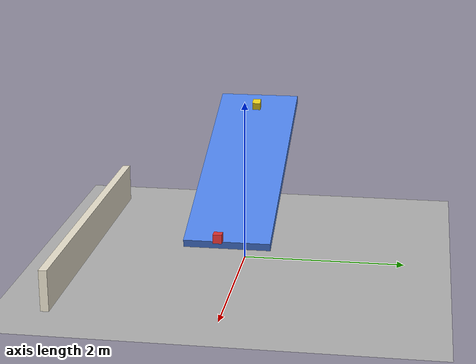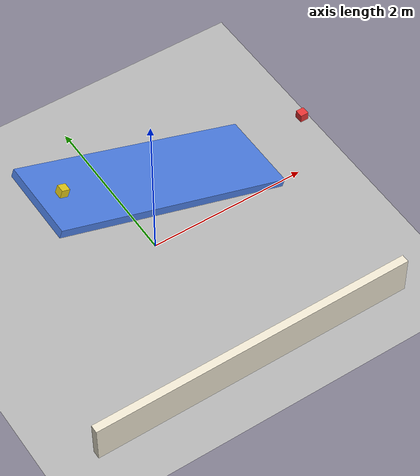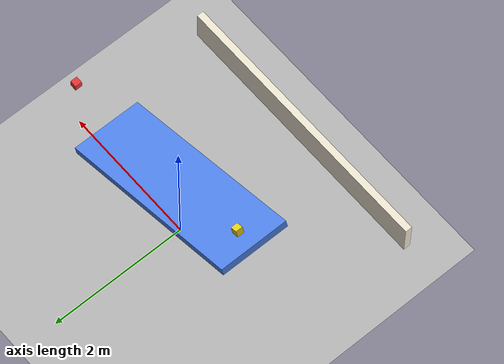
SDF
<?xml version="1.0"?>
<sdf version="1.9">
  <world name="first_world">

    <!-- 1 ms physics steps, try to run in real time (real_time_factor 0 = as fast as possible) -->
    <physics name="1ms" type="ignored">
      <max_step_size>0.001</max_step_size>
      <real_time_factor>1.0</real_time_factor>
    </physics>

    <!-- Systems (plugins): a world does nothing unless you load them -->
    <plugin filename="gz-sim-physics-system" name="gz::sim::systems::Physics"/>
    <plugin filename="gz-sim-user-commands-system" name="gz::sim::systems::UserCommands"/>
    <plugin filename="gz-sim-scene-broadcaster-system" name="gz::sim::systems::SceneBroadcaster"/>

    <gravity>0 0 -9.8</gravity>

    <light type="directional" name="sun">
      <cast_shadows>true</cast_shadows>
      <pose>0 0 10 0 0 0</pose>
      <diffuse>0.9 0.9 0.9 1</diffuse>
      <direction>-0.5 0.1 -0.9</direction>
    </light>

    <model name="ground_plane">
      <static>true</static>
      <link name="link">
        <collision name="collision">
          <geometry><plane><normal>0 0 1</normal><size>20 20</size></plane></geometry>
        </collision>
        <visual name="visual">
          <geometry><plane><normal>0 0 1</normal><size>20 20</size></plane></geometry>
          <material><ambient>0.7 0.7 0.7 1</ambient><diffuse>0.7 0.7 0.7 1</diffuse></material>
        </visual>
      </link>
    </model>

    <!-- A 10 cm, 0.5 kg box whose bottom starts 0.95 m above the ground (centre at z = 1.0) -->
    <model name="drop_box">
      <pose>2 0 1.0 0 0 0</pose>
      <!-- Publishes this model's pose on /model/drop_box/pose with frame names, so it bridges to /tf (06.04) -->
      <plugin filename="gz-sim-pose-publisher-system" name="gz::sim::systems::PosePublisher">
        <publish_model_pose>true</publish_model_pose>
        <publish_link_pose>false</publish_link_pose>
        <publish_visual_pose>false</publish_visual_pose>
        <publish_collision_pose>false</publish_collision_pose>
        <use_pose_vector_msg>true</use_pose_vector_msg>
        <update_frequency>50</update_frequency>
      </plugin>
      <link name="link">
        <inertial>
          <mass>0.5</mass>
          <!-- solid cube: I = m a² / 6 = 0.5 * 0.1² / 6 -->
          <inertia><ixx>8.33e-4</ixx><iyy>8.33e-4</iyy><izz>8.33e-4</izz>
                   <ixy>0</ixy><ixz>0</ixz><iyz>0</iyz></inertia>
        </inertial>
        <collision name="collision">
          <geometry><box><size>0.1 0.1 0.1</size></box></geometry>
        </collision>
        <visual name="visual">
          <geometry><box><size>0.1 0.1 0.1</size></box></geometry>
          <material><ambient>0.9 0.2 0.2 1</ambient><diffuse>0.9 0.2 0.2 1</diffuse></material>
        </visual>
      </link>
    </model>

    <!-- A static 3 m ramp pitched 20° (0.349 rad): its +x end is lower -->
    <model name="ramp">
      <static>true</static>
      <pose>0 0 1.2 0 0.349066 0</pose>
      <link name="link">
        <collision name="collision">
          <geometry><box><size>3.0 1.0 0.1</size></box></geometry>
          <surface><friction><ode><mu>0.3</mu><mu2>0.3</mu2></ode></friction></surface>
        </collision>
        <visual name="visual">
          <geometry><box><size>3.0 1.0 0.1</size></box></geometry>
          <material><ambient>0.3 0.5 0.9 1</ambient><diffuse>0.3 0.5 0.9 1</diffuse></material>
        </visual>
      </link>
    </model>

    <!-- A box resting on the ramp, 1.2 m up-slope from the ramp centre, same pitch -->
    <model name="slider">
      <pose>-1.093429 0 1.704393 0 0.349066 0</pose>
      <!-- Publishes this model's pose on /model/slider/pose with frame names, so it bridges to /tf (06.04) -->
      <plugin filename="gz-sim-pose-publisher-system" name="gz::sim::systems::PosePublisher">
        <publish_model_pose>true</publish_model_pose>
        <publish_link_pose>false</publish_link_pose>
        <publish_visual_pose>false</publish_visual_pose>
        <publish_collision_pose>false</publish_collision_pose>
        <use_pose_vector_msg>true</use_pose_vector_msg>
        <update_frequency>50</update_frequency>
      </plugin>
      <link name="link">
        <inertial>
          <mass>0.5</mass>
          <inertia><ixx>8.33e-4</ixx><iyy>8.33e-4</iyy><izz>8.33e-4</izz>
                   <ixy>0</ixy><ixz>0</ixz><iyz>0</iyz></inertia>
        </inertial>
        <collision name="collision">
          <geometry><box><size>0.1 0.1 0.1</size></box></geometry>
          <surface><friction><ode><mu>0.3</mu><mu2>0.3</mu2></ode></friction></surface>
        </collision>
        <visual name="visual">
          <geometry><box><size>0.1 0.1 0.1</size></box></geometry>
          <material><ambient>0.9 0.8 0.1 1</ambient><diffuse>0.9 0.8 0.1 1</diffuse></material>
        </visual>
      </link>
    </model>

    <!-- A static wall: collision and visual are separate on purpose (see 06.05) -->
    <model name="wall">
      <static>true</static>
      <pose>0 -2 0.25 0 0 0</pose>
      <link name="link">
        <collision name="collision">
          <geometry><box><size>4.0 0.1 0.5</size></box></geometry>
        </collision>
        <visual name="visual">
          <geometry><box><size>4.0 0.1 0.5</size></box></geometry>
          <material><ambient>0.93 0.9 0.82 1</ambient><diffuse>0.93 0.9 0.82 1</diffuse></material>
        </visual>
      </link>
    </model>

  </world>
</sdf>
